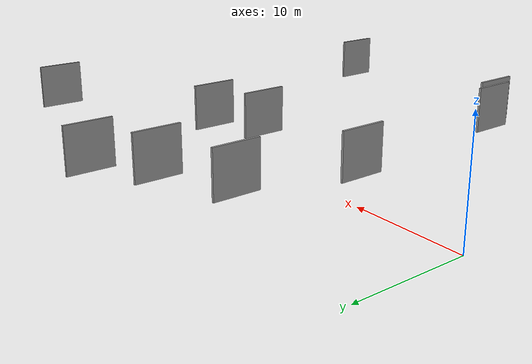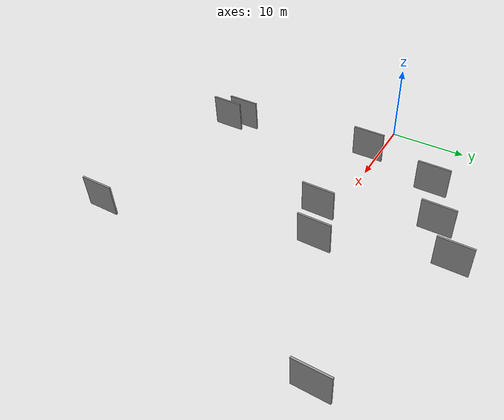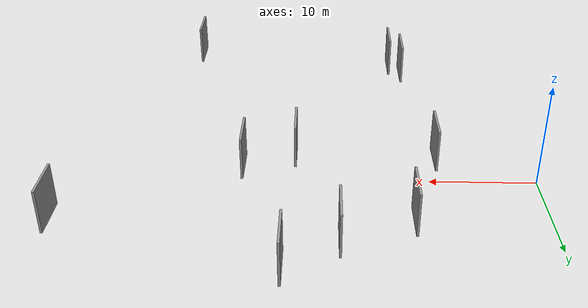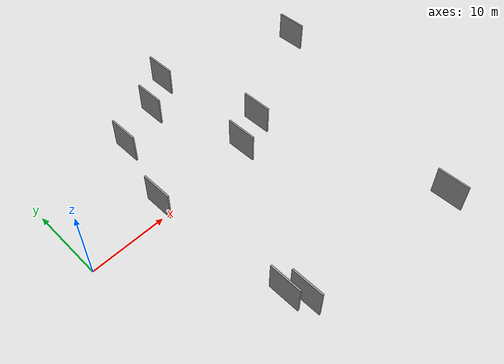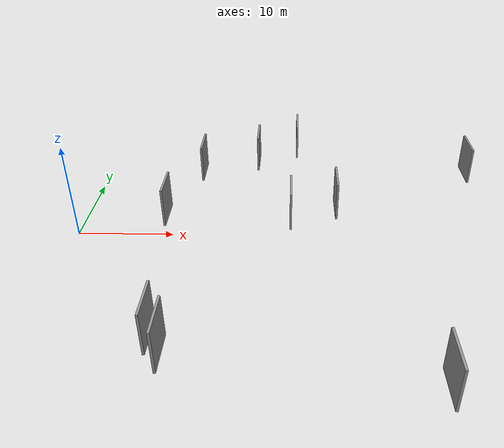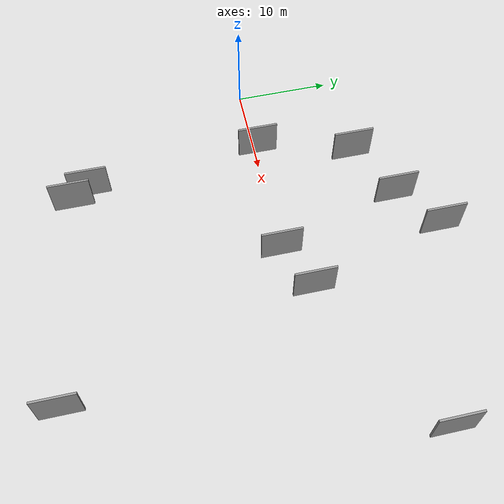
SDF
<sdf version="1.6">
 <world name="default">
  <scene>
   <sky><clouds><speed>12</speed></clouds></sky>
   <ambient>0.4 0.4 0.4 1</ambient>
   <background>0.7 0.7 0.7 1</background>
   <shadows>1</shadows>
  </scene>
  <gravity>0 0 -9.8066</gravity>
  <magnetic_field>6e-06 2.3e-05 -4.2e-05</magnetic_field>
  <physics default="0" name="default_physics" type="ode">
   <ode>
    <solver>
     <type>quick</type>
     <iters>10</iters>
     <sor>1.0</sor>
     <use_dynamic_moi_rescaling>0</use_dynamic_moi_rescaling>
    </solver>
    <constraints>
     <cfm>0</cfm>
     <erp>0.2</erp>
     <contact_max_correcting_vel>100</contact_max_correcting_vel>
     <contact_surface_layer>0.001</contact_surface_layer>
    </constraints>
   </ode>
   <max_step_size>0.004</max_step_size>
   <real_time_factor>1</real_time_factor>
   <real_time_update_rate>250</real_time_update_rate>
  </physics>
  <light name="sun" type="directional">
   <pose>0 0 10 0 0 0</pose>
   <diffuse>0.8 0.8 0.8 1</diffuse>
   <specular>0.2 0.2 0.2 1</specular>
   <attenuation>
    <range>1000</range>
    <constant>0.9</constant>
    <linear>0.01</linear>
    <quadratic>0.001</quadratic>
   </attenuation>
   <direction>-0.5 0.1 -0.9</direction>
  </light>
  <model name="grey_wall_1">
   <static>1</static>
   <pose>42.4041 9.4683 2.5 0.000000 0.000000 1.570796</pose>
   <link name="link">
    <pose>0 0 2.00 0 0 0</pose>
    <collision name="collision"><geometry><box><size>4.00 0.2 4.00</size></box></geometry></collision>
    <visual name="visual">
     <cast_shadows>0</cast_shadows>
     <geometry><box><size>4.00 0.2 4.00</size></box></geometry>
     <material>
      <script>
       <uri>model://grey_wall/materials/scripts</uri>
       <uri>model://grey_wall/materials/textures</uri>
       <name>vrc/grey_wall</name>
      </script>
     </material>
    </visual>
   </link>
  </model>
  <model name="grey_wall_2">
   <static>1</static>
   <pose>12.6546 -19.5369 2.5 0.000000 0.000000 1.570796</pose>
   <link name="link">
    <pose>0 0 2.00 0 0 0</pose>
    <collision name="collision"><geometry><box><size>4.00 0.2 4.00</size></box></geometry></collision>
    <visual name="visual">
     <cast_shadows>0</cast_shadows>
     <geometry><box><size>4.00 0.2 4.00</size></box></geometry>
     <material>
      <script>
       <uri>model://grey_wall/materials/scripts</uri>
       <uri>model://grey_wall/materials/textures</uri>
       <name>vrc/grey_wall</name>
      </script>
     </material>
    </visual>
   </link>
  </model>
  <model name="grey_wall_3">
   <static>1</static>
   <pose>33.8502 -22.4942 2.5 0.000000 0.000000 1.570796</pose>
   <link name="link">
    <pose>0 0 2.00 0 0 0</pose>
    <collision name="collision"><geometry><box><size>4.00 0.2 4.00</size></box></geometry></collision>
    <visual name="visual">
     <cast_shadows>0</cast_shadows>
     <geometry><box><size>4.00 0.2 4.00</size></box></geometry>
     <material>
      <script>
       <uri>model://grey_wall/materials/scripts</uri>
       <uri>model://grey_wall/materials/textures</uri>
       <name>vrc/grey_wall</name>
      </script>
     </material>
    </visual>
   </link>
  </model>
  <model name="grey_wall_4">
   <static>1</static>
   <pose>27.1012 1.4676 2.5 0.000000 0.000000 1.570796</pose>
   <link name="link">
    <pose>0 0 2.00 0 0 0</pose>
    <collision name="collision"><geometry><box><size>4.00 0.2 4.00</size></box></geometry></collision>
    <visual name="visual">
     <cast_shadows>0</cast_shadows>
     <geometry><box><size>4.00 0.2 4.00</size></box></geometry>
     <material>
      <script>
       <uri>model://grey_wall/materials/scripts</uri>
       <uri>model://grey_wall/materials/textures</uri>
       <name>vrc/grey_wall</name>
      </script>
     </material>
    </visual>
   </link>
  </model>
  <model name="grey_wall_5">
   <static>1</static>
   <pose>12.4223 9.3510 2.5 0.000000 0.000000 1.570796</pose>
   <link name="link">
    <pose>0 0 2.00 0 0 0</pose>
    <collision name="collision"><geometry><box><size>4.00 0.2 4.00</size></box></geometry></collision>
    <visual name="visual">
     <cast_shadows>0</cast_shadows>
     <geometry><box><size>4.00 0.2 4.00</size></box></geometry>
     <material>
      <script>
       <uri>model://grey_wall/materials/scripts</uri>
       <uri>model://grey_wall/materials/textures</uri>
       <name>vrc/grey_wall</name>
      </script>
     </material>
    </visual>
   </link>
  </model>
  <model name="grey_wall_6">
   <static>1</static>
   <pose>22.4423 -0.5393 2.5 0.000000 0.000000 1.570796</pose>
   <link name="link">
    <pose>0 0 2.00 0 0 0</pose>
    <collision name="collision"><geometry><box><size>4.00 0.2 4.00</size></box></geometry></collision>
    <visual name="visual">
     <cast_shadows>0</cast_shadows>
     <geometry><box><size>4.00 0.2 4.00</size></box></geometry>
     <material>
      <script>
       <uri>model://grey_wall/materials/scripts</uri>
       <uri>model://grey_wall/materials/textures</uri>
       <name>vrc/grey_wall</name>
      </script>
     </material>
    </visual>
   </link>
  </model>
  <model name="grey_wall_7">
   <static>1</static>
   <pose>23.1135 15.3368 2.5 0.000000 0.000000 1.570796</pose>
   <link name="link">
    <pose>0 0 2.00 0 0 0</pose>
    <collision name="collision"><geometry><box><size>4.00 0.2 4.00</size></box></geometry></collision>
    <visual name="visual">
     <cast_shadows>0</cast_shadows>
     <geometry><box><size>4.00 0.2 4.00</size></box></geometry>
     <material>
      <script>
       <uri>model://grey_wall/materials/scripts</uri>
       <uri>model://grey_wall/materials/textures</uri>
       <name>vrc/grey_wall</name>
      </script>
     </material>
    </visual>
   </link>
  </model>
  <model name="grey_wall_8">
   <static>1</static>
   <pose>18.5927 12.0618 2.5 0.000000 0.000000 1.570796</pose>
   <link name="link">
    <pose>0 0 2.00 0 0 0</pose>
    <collision name="collision"><geometry><box><size>4.00 0.2 4.00</size></box></geometry></collision>
    <visual name="visual">
     <cast_shadows>0</cast_shadows>
     <geometry><box><size>4.00 0.2 4.00</size></box></geometry>
     <material>
      <script>
       <uri>model://grey_wall/materials/scripts</uri>
       <uri>model://grey_wall/materials/textures</uri>
       <name>vrc/grey_wall</name>
      </script>
     </material>
    </visual>
   </link>
  </model>
  <model name="grey_wall_9">
   <static>1</static>
   <pose>9.7652 -0.0792 2.5 0.000000 0.000000 1.570796</pose>
   <link name="link">
    <pose>0 0 2.00 0 0 0</pose>
    <collision name="collision"><geometry><box><size>4.00 0.2 4.00</size></box></geometry></collision>
    <visual name="visual">
     <cast_shadows>0</cast_shadows>
     <geometry><box><size>4.00 0.2 4.00</size></box></geometry>
     <material>
      <script>
       <uri>model://grey_wall/materials/scripts</uri>
       <uri>model://grey_wall/materials/textures</uri>
       <name>vrc/grey_wall</name>
      </script>
     </material>
    </visual>
   </link>
  </model>
  <model name="grey_wall_10">
   <static>1</static>
   <pose>11.4539 -17.7455 2.5 0.000000 0.000000 1.570796</pose>
   <link name="link">
    <pose>0 0 2.00 0 0 0</pose>
    <collision name="collision"><geometry><box><size>4.00 0.2 4.00</size></box></geometry></collision>
    <visual name="visual">
     <cast_shadows>0</cast_shadows>
     <geometry><box><size>4.00 0.2 4.00</size></box></geometry>
     <material>
      <script>
       <uri>model://grey_wall/materials/scripts</uri>
       <uri>model://grey_wall/materials/textures</uri>
       <name>vrc/grey_wall</name>
      </script>
     </material>
    </visual>
   </link>
  </model>
 </world>
</sdf>
